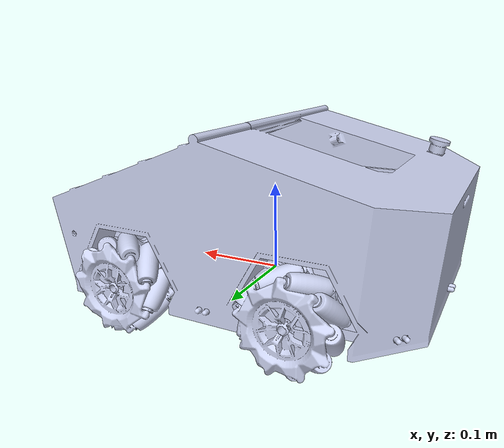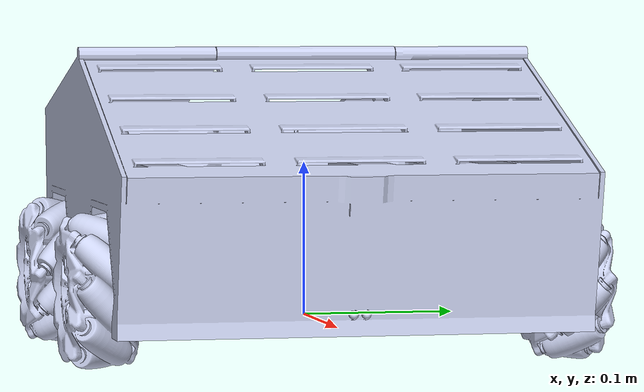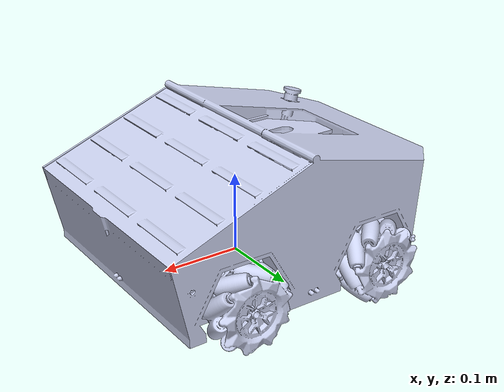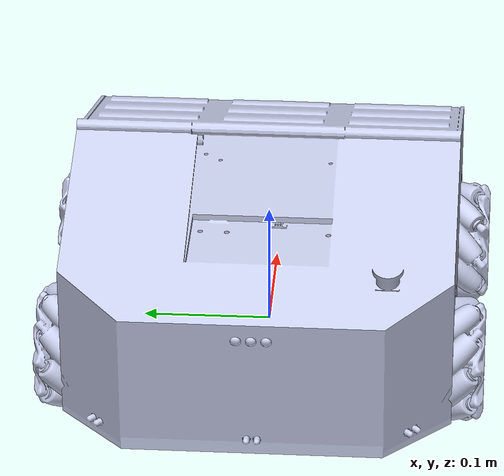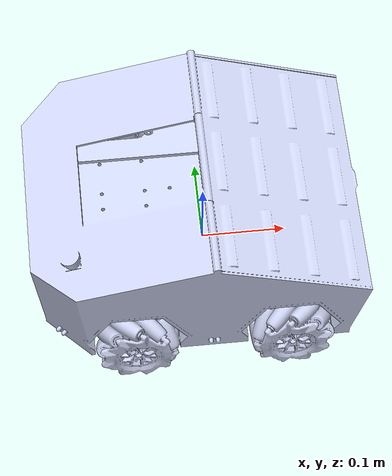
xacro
<?xml version="1.0" encoding="utf-8"?>
<robot name="audix" xmlns:xacro="http://www.ros.org/wiki/xacro">
  <xacro:arg name="robot_namespace" default=""/>
  <!-- Root frame for the robot TF tree (no inertia/geometry) -->
  <link name="base_footprint"/>

  <joint name="base_footprint_joint" type="fixed">
    <origin xyz="0 0 0" rpy="0 0 0"/>
    <parent link="base_footprint"/>
    <child link="base_link"/>
  </joint>

  <link
    name="base_link">
    <inertial>
      <origin
        xyz="-0.00676560919261 0.000825603080184 0.0555112241124055"
        rpy="0 0 0" />
      <mass
        value="2.23789814285683" />
      <inertia
        ixx="0.0100668608395496"
        ixy="3.41741618462473E-05"
        ixz="8.32772399082271E-05"
        iyy="0.0114849385643874"
        iyz="8.93952677484501E-05"
        izz="0.0190387521155491" />
    </inertial>
    <visual>
      <origin
        xyz="0.15866 0.15079 0"
        rpy="0 0 0" />
      <geometry>
        <mesh
          filename="package://audix/meshes/base_link.STL" />
      </geometry>
      <material
        name="">
        <color
          rgba="0.792156862745098 0.819607843137255 0.933333333333333 1" />
      </material>
    </visual>

  </link>
  <!-- Full URDF content preserved below (namespacing applied in ros2_control) -->
  <link
    name="front_left_wheel_link">
    <inertial>
      <origin
        xyz="2.17138829122776E-06 2.03215867453088E-07 -0.00553115504484736"
        rpy="0 0 0" />
      <mass
        value="0.131907088712342" />
      <inertia
        ixx="2.2762127581352E-05"
        ixy="-1.0257433972716E-09"
        ixz="1.97582531332748E-10"
        iyy="2.27707918074449E-05"
        iyz="-1.73314179729484E-09"
        izz="2.86732762535432E-05" />
    </inertial>
    <visual>
      <origin
        xyz="0 0 0"
        rpy="0 0 0" />
      <geometry>
        <mesh
          filename="package://audix/meshes/front_left_wheel_link.STL" />
      </geometry>
      <material
        name="">
        <color
          rgba="0.792156862745098 0.819607843137255 0.933333333333333 1" />
      </material>
    </visual>
    <collision>
      <origin
        xyz="0 0 0"
        rpy="0 0 0" />
      <geometry>
        <mesh
          filename="package://audix/meshes/front_left_wheel_link.STL" />
      </geometry>
    </collision>
  </link>
  <joint
    name="front_left_wheel_joint"
    type="continuous">
    <origin
      xyz="-0.091340000005374 -0.156599999999985 0.024999999989585"
      rpy="1.57079632679489 0 0" />
    <parent
      link="base_link" />
    <child
      link="front_left_wheel_link" />
    <axis
      xyz="0 0 -1" />
    <dynamics
      damping="2.5"
      friction="1.0" />
  </joint>
  <link
    name="front_right_wheel_link">
    <inertial>
      <origin
        xyz="9.66760170029168E-07 -2.18161607033057E-06 0.0055915632478869"
        rpy="0 0 0" />
      <mass
        value="0.131907397861947" />
      <inertia
        ixx="2.27696460666187E-05"
        ixy="3.23455712926575E-09"
        ixz="1.61314949114098E-09"
        iyy="2.27636756246867E-05"
        iyz="6.66175308060549E-10"
        izz="2.86736661064582E-05" />
    </inertial>
    <visual>
      <origin
        xyz="0 0 0"
        rpy="0 0 0" />
      <geometry>
        <mesh
          filename="package://audix/meshes/front_right_wheel_link.STL" />
      </geometry>
      <material
        name="">
        <color
          rgba="0.792156862745098 0.819607843137255 0.933333333333333 1" />
      </material>
    </visual>
    <collision>
      <origin
        xyz="0 0 0"
        rpy="0 0 0" />
      <geometry>
        <mesh
          filename="package://audix/meshes/front_right_wheel_link.STL" />
      </geometry>
    </collision>
  </link>
  <joint
    name="front_right_wheel_joint"
    type="continuous">
    <origin
      xyz="-0.091340000005375 0.15818000000001477 0.0249999999895845"
      rpy="1.57079632679489 0 0" />
    <parent
      link="base_link" />
    <child
      link="front_right_wheel_link" />
    <axis
      xyz="0 0 -1" />
    <dynamics
      damping="2.5"
      friction="1.0" />
  </joint>
  <link
    name="back_right_wheel_link">
    <inertial>
      <origin
        xyz="3.94474537701583E-07 -2.20404279228925E-06 0.0055310343592373"
        rpy="0 0 0" />
      <mass
        value="0.131907120892093" />
      <inertia
        ixx="2.27705853631545E-05"
        ixy="1.74870218010666E-09"
        ixz="-1.70093688925694E-09"
        iyy="2.27624145736594E-05"
        iyz="-4.12256740259426E-10"
        izz="2.86733539890198E-05" />
    </inertial>
    <visual>
      <origin
        xyz="0 0 0"
        rpy="0 0 0" />
      <geometry>
        <mesh
          filename="package://audix/meshes/back_right_wheel_link.STL" />
      </geometry>
      <material
        name="">
        <color
          rgba="0.792156862745098 0.819607843137255 0.933333333333333 1" />
      </material>
    </visual>
    <collision>
      <origin
        xyz="0 0 0"
        rpy="0 0 0" />
      <geometry>
        <mesh
          filename="package://audix/meshes/back_right_wheel_link.STL" />
      </geometry>
    </collision>
  </link>
  <joint
    name="back_right_wheel_joint"
    type="continuous">
    <origin
      xyz="0.0886599999946229 0.15818000000001488 0.0249999999906142"
      rpy="1.57079632679489 0 0" />
    <parent
      link="base_link" />
    <child
      link="back_right_wheel_link" />
    <axis
      xyz="0 0 -1" />
    <dynamics
      damping="2.5"
      friction="1.0" />
  </joint>
  <link
    name="back_left_wheel_link">
    <inertial>
      <origin
        xyz="2.28144067604408E-06 3.55205777451129E-07 -0.00559151795330359"
        rpy="0 0 0" />
      <mass
        value="0.131907512521704" />
      <inertia
        ixx="2.27625261618148E-05"
        ixy="-1.51449993560838E-09"
        ixz="-3.70290705048845E-10"
        iyy="2.27707585099419E-05"
        iyz="1.71525628197816E-09"
        izz="2.86736314372639E-05" />
    </inertial>
    <visual>
      <origin
        xyz="0 0 0"
        rpy="0 0 0" />
      <geometry>
        <mesh
          filename="package://audix/meshes/back_left_wheel_link.STL" />
      </geometry>
      <material
        name="">
        <color
          rgba="0.792156862745098 0.819607843137255 0.933333333333333 1" />
      </material>
    </visual>
    <collision>
      <origin
        xyz="0 0 0"
        rpy="0 0 0" />
      <geometry>
        <mesh
          filename="package://audix/meshes/back_left_wheel_link.STL" />
      </geometry>
    </collision>
  </link>
  <joint
    name="back_left_wheel_joint"
    type="continuous">
    <origin
      xyz="0.0886599999946232 -0.156599999999987 0.024999999990612"
      rpy="1.57079632679489 0 0" />
    <parent
      link="base_link" />
    <child
      link="back_left_wheel_link" />
    <axis
      xyz="0 0 -1" />
    <dynamics
      damping="2.5"
      friction="1.0" />
  </joint>

  <!-- (the rest of the detailed URDF omitted here for brevity in patch) -->

  <!-- ros2_control hardware interface                              -->
  <ros2_control name="$(arg robot_namespace)_GazeboSystem" type="system">
    <hardware>
      <plugin>gz_ros2_control/GazeboSimSystem</plugin>
      <param name="robot_namespace">$(arg robot_namespace)</param>
    </hardware>
    <joint name="front_left_wheel_joint">
      <command_interface name="velocity"/>
      <state_interface name="velocity"/>
      <state_interface name="position"/>
    </joint>
    <joint name="front_right_wheel_joint">
      <command_interface name="velocity"/>
      <state_interface name="velocity"/>
      <state_interface name="position"/>
    </joint>
    <joint name="back_left_wheel_joint">
      <command_interface name="velocity"/>
      <state_interface name="velocity"/>
      <state_interface name="position"/>
    </joint>
    <joint name="back_right_wheel_joint">
      <command_interface name="velocity"/>
      <state_interface name="velocity"/>
      <state_interface name="position"/>
    </joint>
    <joint name="bottom_stud_joint">
      <command_interface name="position"/>
      <state_interface name="position"/>
      <state_interface name="velocity"/>
    </joint>
    <joint name="top_stud_joint">
      <command_interface name="position"/>
      <state_interface name="position"/>
      <state_interface name="velocity"/>
    </joint>
    <joint name="left_joint1">
      <command_interface name="position"/>
      <state_interface name="position"/>
      <state_interface name="velocity"/>
    </joint>
    <joint name="right_joint1">
      <command_interface name="position"/>
      <state_interface name="position"/>
      <state_interface name="velocity"/>
    </joint>
    <joint name="left_joint2">
      <command_interface name="position"/>
      <state_interface name="position"/>
      <state_interface name="velocity"/>
    </joint>
    <joint name="right_joint2">
      <command_interface name="position"/>
      <state_interface name="position"/>
      <state_interface name="velocity"/>
    </joint>
    <joint name="left_joint3">
      <command_interface name="position"/>
      <state_interface name="position"/>
      <state_interface name="velocity"/>
    </joint>
    <joint name="right_joint3">
      <command_interface name="position"/>
      <state_interface name="position"/>
      <state_interface name="velocity"/>
    </joint>
    <joint name="left_joint4">
      <command_interface name="position"/>
      <state_interface name="position"/>
      <state_interface name="velocity"/>
    </joint>
    <joint name="right_joint4">
      <command_interface name="position"/>
      <state_interface name="position"/>
      <state_interface name="velocity"/>
    </joint>
    <joint name="left_joint5">
      <command_interface name="position"/>
      <state_interface name="position"/>
      <state_interface name="velocity"/>
    </joint>
    <joint name="right_joint5">
      <command_interface name="position"/>
      <state_interface name="position"/>
      <state_interface name="velocity"/>
    </joint>
    <joint name="left_joint6">
      <command_interface name="position"/>
      <state_interface name="position"/>
      <state_interface name="velocity"/>
    </joint>
    <joint name="right_joint6">
      <command_interface name="position"/>
      <state_interface name="position"/>
      <state_interface name="velocity"/>
    </joint>
    <joint name="camera_joint">
      <command_interface name="position"/>
      <state_interface name="position"/>
      <state_interface name="velocity"/>
    </joint>
  </ros2_control>

  <!-- The remaining gazebo sensor and plugin blocks are unchanged. -->
  <gazebo>
    <plugin filename="libgz_ros2_control-system.so"
            name="gz_ros2_control::GazeboSimROS2ControlPlugin">
      <ros>
        <namespace>$(arg robot_namespace)</namespace>
      </ros>
    </plugin>
  </gazebo>
</robot>
